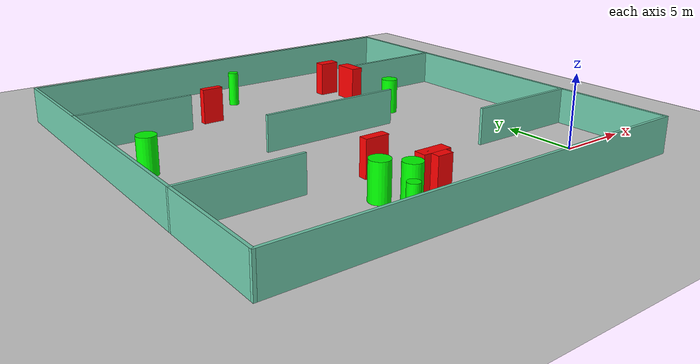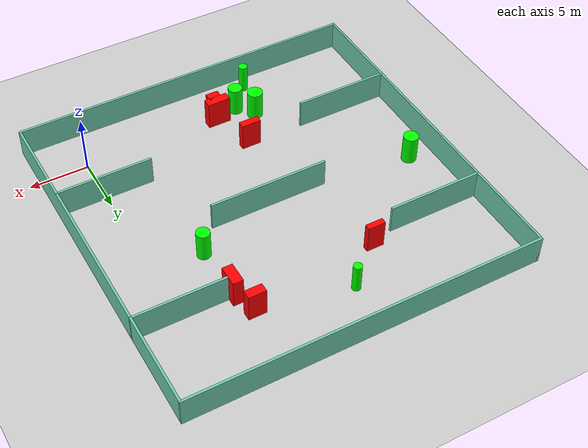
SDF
<sdf version="1.7">
 <world name="default">
  <light name="sun" type="directional">
   <pose>0 0 10 0 -0 0</pose>
   <diffuse>0.8 0.8 0.8 1</diffuse>
   <specular>0.2 0.2 0.2 1</specular>
   <attenuation>
    <range>1000</range>
    <constant>0.9</constant>
    <linear>0.01</linear>
    <quadratic>0.001</quadratic>
   </attenuation>
   <direction>-0.5 0.1 -0.9</direction>
   <spot><inner_angle>0</inner_angle><outer_angle>0</outer_angle><falloff>0</falloff></spot>
  </light>
  <model name="ground_plane">
   <static>1</static>
   <link name="link">
    <collision name="collision">
     <geometry><plane><normal>0 0 1</normal><size>100 100</size></plane></geometry>
     <surface>
      <contact><collide_bitmask>65535</collide_bitmask></contact>
      <friction><ode><mu>100</mu><mu2>50</mu2></ode></friction>
     </surface>
    </collision>
    <visual name="visual">
     <cast_shadows>0</cast_shadows>
     <geometry><plane><normal>0 0 1</normal><size>100 100</size></plane></geometry>
     <material>
      <script><uri>file://media/materials/scripts/gazebo.material</uri><name>Gazebo/Grey</name></script>
     </material>
    </visual>
   </link>
  </model>
  <gravity>0 0 -9.8</gravity>
  <magnetic_field>6e-06 2.3e-05 -4.2e-05</magnetic_field>
  <atmosphere type="adiabatic"/>
  <physics type="ode">
   <max_step_size>0.001</max_step_size>
   <real_time_factor>1</real_time_factor>
   <real_time_update_rate>1000</real_time_update_rate>
  </physics>
  <scene><ambient>0.4 0.4 0.4 1</ambient><background>0.7 0.7 0.7 1</background><shadows>1</shadows></scene>
  <spherical_coordinates>
   <surface_model>EARTH_WGS84</surface_model>
   <latitude_deg>0</latitude_deg>
   <longitude_deg>0</longitude_deg>
   <elevation>0</elevation>
   <heading_deg>0</heading_deg>
  </spherical_coordinates>
  <model name="my_base_walls">
   <link name="Wall_10">
    <collision name="Wall_10_Collision">
     <geometry><box><size>8.2 0.2 2.5</size></box></geometry>
     <pose>0 0 1.25 0 -0 0</pose>
    </collision>
    <visual name="Wall_10_Visual">
     <pose>0 0 1.25 0 -0 0</pose>
     <geometry><box><size>8.2 0.2 2.5</size></box></geometry>
     <material>
      <script><uri>file://media/materials/scripts/gazebo.material</uri><name>Gazebo/Grey</name></script>
      <ambient>0.435294 0.796078 0.67451 1</ambient>
     </material>
     <meta><layer>0</layer></meta>
    </visual>
    <pose>-11 -7 0 0 -0 0</pose>
   </link>
   <link name="Wall_12">
    <collision name="Wall_12_Collision">
     <geometry><box><size>8.2 0.2 2.5</size></box></geometry>
     <pose>0 0 1.25 0 -0 0</pose>
    </collision>
    <visual name="Wall_12_Visual">
     <pose>0 0 1.25 0 -0 0</pose>
     <geometry><box><size>8.2 0.2 2.5</size></box></geometry>
     <material>
      <script><uri>file://media/materials/scripts/gazebo.material</uri><name>Gazebo/Grey</name></script>
      <ambient>0.435294 0.796078 0.67451 1</ambient>
     </material>
     <meta><layer>0</layer></meta>
    </visual>
    <pose>-11 7 0 0 -0 0</pose>
   </link>
   <link name="Wall_14">
    <collision name="Wall_14_Collision">
     <geometry><box><size>8.2 0.2 2.5</size></box></geometry>
     <pose>0 0 1.25 0 -0 0</pose>
    </collision>
    <visual name="Wall_14_Visual">
     <pose>0 0 1.25 0 -0 0</pose>
     <geometry><box><size>8.2 0.2 2.5</size></box></geometry>
     <material>
      <script><uri>file://media/materials/scripts/gazebo.material</uri><name>Gazebo/Grey</name></script>
      <ambient>0.435294 0.796078 0.67451 1</ambient>
     </material>
     <meta><layer>0</layer></meta>
    </visual>
    <pose>11 7 0 0 -0 3.14159</pose>
   </link>
   <link name="Wall_16">
    <collision name="Wall_16_Collision">
     <geometry><box><size>10.2 0.2 2.5</size></box></geometry>
     <pose>0 0 1.25 0 -0 0</pose>
    </collision>
    <visual name="Wall_16_Visual">
     <pose>0 0 1.25 0 -0 0</pose>
     <geometry><box><size>10.2 0.2 2.5</size></box></geometry>
     <material>
      <script><uri>file://media/materials/scripts/gazebo.material</uri><name>Gazebo/Grey</name></script>
      <ambient>0.435294 0.796078 0.67451 1</ambient>
     </material>
     <meta><layer>0</layer></meta>
    </visual>
    <pose>0 0 0 0 -0 3.14159</pose>
   </link>
   <link name="Wall_2">
    <collision name="Wall_2_Collision">
     <geometry><box><size>30.2 0.2 2.5</size></box></geometry>
     <pose>0 0 1.25 0 -0 0</pose>
    </collision>
    <visual name="Wall_2_Visual">
     <pose>0 0 1.25 0 -0 0</pose>
     <geometry><box><size>30.2 0.2 2.5</size></box></geometry>
     <material>
      <script><uri>file://media/materials/scripts/gazebo.material</uri><name>Gazebo/Grey</name></script>
      <ambient>0.435294 0.796078 0.67451 1</ambient>
     </material>
     <meta><layer>0</layer></meta>
    </visual>
    <pose>0 -15 0 0 -0 3.14159</pose>
   </link>
   <link name="Wall_3">
    <collision name="Wall_3_Collision">
     <geometry><box><size>30.2 0.2 2.5</size></box></geometry>
     <pose>0 0 1.25 0 -0 0</pose>
    </collision>
    <visual name="Wall_3_Visual">
     <pose>0 0 1.25 0 -0 0</pose>
     <geometry><box><size>30.2 0.2 2.5</size></box></geometry>
     <material>
      <script><uri>file://media/materials/scripts/gazebo.material</uri><name>Gazebo/Grey</name></script>
      <ambient>0.435294 0.796078 0.67451 1</ambient>
     </material>
     <meta><layer>0</layer></meta>
    </visual>
    <pose>-15 0 0 0 -0 1.5708</pose>
   </link>
   <link name="Wall_4">
    <collision name="Wall_4_Collision">
     <geometry><box><size>30.2 0.2 2.5</size></box></geometry>
     <pose>0 0 1.25 0 -0 0</pose>
    </collision>
    <visual name="Wall_4_Visual">
     <pose>0 0 1.25 0 -0 0</pose>
     <geometry><box><size>30.2 0.2 2.5</size></box></geometry>
     <material>
      <script><uri>file://media/materials/scripts/gazebo.material</uri><name>Gazebo/Grey</name></script>
      <ambient>0.435294 0.796078 0.67451 1</ambient>
     </material>
     <meta><layer>0</layer></meta>
    </visual>
    <pose>0 15 0 0 -0 0</pose>
   </link>
   <link name="Wall_6">
    <collision name="Wall_6_Collision">
     <geometry><box><size>30.2 0.2 2.5</size></box></geometry>
     <pose>0 0 1.25 0 -0 0</pose>
    </collision>
    <visual name="Wall_6_Visual">
     <pose>0 0 1.25 0 -0 0</pose>
     <geometry><box><size>30.2 0.2 2.5</size></box></geometry>
     <material>
      <script><uri>file://media/materials/scripts/gazebo.material</uri><name>Gazebo/Grey</name></script>
      <ambient>0.435294 0.796078 0.67451 1</ambient>
     </material>
     <meta><layer>0</layer></meta>
    </visual>
    <pose>15 0 0 0 -0 1.5708</pose>
   </link>
   <link name="Wall_8">
    <collision name="Wall_8_Collision">
     <geometry><box><size>8.2 0.2 2.5</size></box></geometry>
     <pose>0 0 1.25 0 -0 0</pose>
    </collision>
    <visual name="Wall_8_Visual">
     <pose>0 0 1.25 0 -0 0</pose>
     <geometry><box><size>8.2 0.2 2.5</size></box></geometry>
     <material>
      <script><uri>file://media/materials/scripts/gazebo.material</uri><name>Gazebo/Grey</name></script>
      <ambient>0.435294 0.796078 0.67451 1</ambient>
     </material>
     <meta><layer>0</layer></meta>
    </visual>
    <pose>11 -7 0 0 -0 3.14159</pose>
   </link>
   <static>1</static>
   <pose>-11 11 0 0 -0 0</pose>
  </model>
  <model name="cylinder1">
   <static>1</static>
   <link name="link">
    <inertial>
     <mass>1</mass>
     <inertia><ixx>0.5</ixx><ixy>0</ixy><ixz>0</ixz><iyy>0.5</iyy><iyz>0</iyz><izz>1</izz></inertia>
    </inertial>
    <collision name="collision">
     <geometry><cylinder><radius>0.6677942230409948</radius><length>2.5</length></cylinder></geometry>
    </collision>
    <visual name="visual">
     <geometry><cylinder><radius>0.6677942230409948</radius><length>2.5</length></cylinder></geometry>
     <material>
      <ambient>0 1 0 1</ambient>
      <diffuse>0 1 0 1</diffuse>
      <specular>0.1 0.1 0.1 1</specular>
      <emissive>0 0 0 0</emissive>
     </material>
    </visual>
   </link>
   <pose>-15.226787863155202 0.8773838244805092 1.25 0 0 0</pose>
  </model>
  <model name="cylinder2">
   <static>1</static>
   <link name="link">
    <inertial>
     <mass>1</mass>
     <inertia><ixx>0.5</ixx><ixy>0</ixy><ixz>0</ixz><iyy>0.5</iyy><iyz>0</iyz><izz>1</izz></inertia>
    </inertial>
    <collision name="collision">
     <geometry><cylinder><radius>0.5744585264021542</radius><length>2.5</length></cylinder></geometry>
    </collision>
    <visual name="visual">
     <geometry><cylinder><radius>0.5744585264021542</radius><length>2.5</length></cylinder></geometry>
     <material>
      <ambient>0 1 0 1</ambient>
      <diffuse>0 1 0 1</diffuse>
      <specular>0.1 0.1 0.1 1</specular>
      <emissive>0 0 0 0</emissive>
     </material>
    </visual>
   </link>
   <pose>-4.097068759786051 13.213321430171963 1.25 0 0 0</pose>
  </model>
  <model name="cylinder3">
   <static>1</static>
   <link name="link">
    <inertial>
     <mass>1</mass>
     <inertia><ixx>0.5</ixx><ixy>0</ixy><ixz>0</ixz><iyy>0.5</iyy><iyz>0</iyz><izz>1</izz></inertia>
    </inertial>
    <collision name="collision">
     <geometry><cylinder><radius>0.38428097270067074</radius><length>2.5</length></cylinder></geometry>
    </collision>
    <visual name="visual">
     <geometry><cylinder><radius>0.38428097270067074</radius><length>2.5</length></cylinder></geometry>
     <material>
      <ambient>0 1 0 1</ambient>
      <diffuse>0 1 0 1</diffuse>
      <specular>0.1 0.1 0.1 1</specular>
      <emissive>0 0 0 0</emissive>
     </material>
    </visual>
   </link>
   <pose>-15.952002086833584 -2.627628045599823 1.25 0 0 0</pose>
  </model>
  <model name="cylinder4">
   <static>1</static>
   <link name="link">
    <inertial>
     <mass>1</mass>
     <inertia><ixx>0.5</ixx><ixy>0</ixy><ixz>0</ixz><iyy>0.5</iyy><iyz>0</iyz><izz>1</izz></inertia>
    </inertial>
    <collision name="collision">
     <geometry><cylinder><radius>0.6191851352126526</radius><length>2.5</length></cylinder></geometry>
    </collision>
    <visual name="visual">
     <geometry><cylinder><radius>0.6191851352126526</radius><length>2.5</length></cylinder></geometry>
     <material>
      <ambient>0 1 0 1</ambient>
      <diffuse>0 1 0 1</diffuse>
      <specular>0.1 0.1 0.1 1</specular>
      <emissive>0 0 0 0</emissive>
     </material>
    </visual>
   </link>
   <pose>-14.018634857229305 -0.4210182308976589 1.25 0 0 0</pose>
  </model>
  <model name="cylinder5">
   <static>1</static>
   <link name="link">
    <inertial>
     <mass>1</mass>
     <inertia><ixx>0.5</ixx><ixy>0</ixy><ixz>0</ixz><iyy>0.5</iyy><iyz>0</iyz><izz>1</izz></inertia>
    </inertial>
    <collision name="collision">
     <geometry><cylinder><radius>0.6417091608494926</radius><length>2.5</length></cylinder></geometry>
    </collision>
    <visual name="visual">
     <geometry><cylinder><radius>0.6417091608494926</radius><length>2.5</length></cylinder></geometry>
     <material>
      <ambient>0 1 0 1</ambient>
      <diffuse>0 1 0 1</diffuse>
      <specular>0.1 0.1 0.1 1</specular>
      <emissive>0 0 0 0</emissive>
     </material>
    </visual>
   </link>
   <pose>-23.775687346288937 11.893020842292279 1.25 0 0 0</pose>
  </model>
  <model name="cylinder6">
   <static>1</static>
   <link name="link">
    <inertial>
     <mass>1</mass>
     <inertia><ixx>0.5</ixx><ixy>0</ixy><ixz>0</ixz><iyy>0.5</iyy><iyz>0</iyz><izz>1</izz></inertia>
    </inertial>
    <collision name="collision">
     <geometry><cylinder><radius>0.3627433387147129</radius><length>2.5</length></cylinder></geometry>
    </collision>
    <visual name="visual">
     <geometry><cylinder><radius>0.3627433387147129</radius><length>2.5</length></cylinder></geometry>
     <material>
      <ambient>0 1 0 1</ambient>
      <diffuse>0 1 0 1</diffuse>
      <specular>0.1 0.1 0.1 1</specular>
      <emissive>0 0 0 0</emissive>
     </material>
    </visual>
   </link>
   <pose>-12.54455368913249 21.658874908526776 1.25 0 0 0</pose>
  </model>
  <model name="box1">
   <static>1</static>
   <link name="link">
    <inertial>
     <mass>1</mass>
     <inertia><ixx>0.083</ixx><ixy>0</ixy><ixz>0</ixz><iyy>0.083</iyy><iyz>0</iyz><izz>0.083</izz></inertia>
    </inertial>
    <collision name="collision">
     <geometry><box><size>1.4911696288026515 0.5047592375663806 2.5</size></box></geometry>
    </collision>
    <visual name="visual">
     <geometry><box><size>1.4911696288026515 0.5047592375663806 2.5</size></box></geometry>
     <material>
      <ambient>1 0 0 1</ambient>
      <diffuse>1 0 0 1</diffuse>
      <specular>0.1 0.1 0.1 1</specular>
      <emissive>0 0 0 0</emissive>
     </material>
    </visual>
    <sensor name="my_contact" type="contact">
     <contact><collision>box_collision</collision><topic>__default_topic__</topic></contact>
    </sensor>
   </link>
   <pose>-15.936404089550454 18.758785111863 1.25 0 0 0</pose>
  </model>
  <model name="box2">
   <static>1</static>
   <link name="link">
    <inertial>
     <mass>1</mass>
     <inertia><ixx>0.083</ixx><ixy>0</ixy><ixz>0</ixz><iyy>0.083</iyy><iyz>0</iyz><izz>0.083</izz></inertia>
    </inertial>
    <collision name="collision">
     <geometry><box><size>2.0064410732695297 0.7905271504671451 2.5</size></box></geometry>
    </collision>
    <visual name="visual">
     <geometry><box><size>2.0064410732695297 0.7905271504671451 2.5</size></box></geometry>
     <material>
      <ambient>1 0 0 1</ambient>
      <diffuse>1 0 0 1</diffuse>
      <specular>0.1 0.1 0.1 1</specular>
      <emissive>0 0 0 0</emissive>
     </material>
    </visual>
    <sensor name="my_contact" type="contact">
     <contact><collision>box_collision</collision><topic>__default_topic__</topic></contact>
    </sensor>
   </link>
   <pose>-11.995018067159538 0.18830231811434572 1.25 0 0 0</pose>
  </model>
  <model name="box3">
   <static>1</static>
   <link name="link">
    <inertial>
     <mass>1</mass>
     <inertia><ixx>0.083</ixx><ixy>0</ixy><ixz>0</ixz><iyy>0.083</iyy><iyz>0</iyz><izz>0.083</izz></inertia>
    </inertial>
    <collision name="collision">
     <geometry><box><size>1.4984505065793359 0.7699952551854543 2.5</size></box></geometry>
    </collision>
    <visual name="visual">
     <geometry><box><size>1.4984505065793359 0.7699952551854543 2.5</size></box></geometry>
     <material>
      <ambient>1 0 0 1</ambient>
      <diffuse>1 0 0 1</diffuse>
      <specular>0.1 0.1 0.1 1</specular>
      <emissive>0 0 0 0</emissive>
     </material>
    </visual>
    <sensor name="my_contact" type="contact">
     <contact><collision>box_collision</collision><topic>__default_topic__</topic></contact>
    </sensor>
   </link>
   <pose>-4.831345603335391 20.113265775308403 1.25 0 0 0</pose>
  </model>
  <model name="box4">
   <static>1</static>
   <link name="link">
    <inertial>
     <mass>1</mass>
     <inertia><ixx>0.083</ixx><ixy>0</ixy><ixz>0</ixz><iyy>0.083</iyy><iyz>0</iyz><izz>0.083</izz></inertia>
    </inertial>
    <collision name="collision">
     <geometry><box><size>0.8823456017055864 1.7768944126226272 2.5</size></box></geometry>
    </collision>
    <visual name="visual">
     <geometry><box><size>0.8823456017055864 1.7768944126226272 2.5</size></box></geometry>
     <material>
      <ambient>1 0 0 1</ambient>
      <diffuse>1 0 0 1</diffuse>
      <specular>0.1 0.1 0.1 1</specular>
      <emissive>0 0 0 0</emissive>
     </material>
    </visual>
    <sensor name="my_contact" type="contact">
     <contact><collision>box_collision</collision><topic>__default_topic__</topic></contact>
    </sensor>
   </link>
   <pose>-4.153229556182886 17.928861802058773 1.25 0 0 0</pose>
  </model>
  <model name="box5">
   <static>1</static>
   <link name="link">
    <inertial>
     <mass>1</mass>
     <inertia><ixx>0.083</ixx><ixy>0</ixy><ixz>0</ixz><iyy>0.083</iyy><iyz>0</iyz><izz>0.083</izz></inertia>
    </inertial>
    <collision name="collision">
     <geometry><box><size>1.683729194985675 0.620495431844948 2.5</size></box></geometry>
    </collision>
    <visual name="visual">
     <geometry><box><size>1.683729194985675 0.620495431844948 2.5</size></box></geometry>
     <material>
      <ambient>1 0 0 1</ambient>
      <diffuse>1 0 0 1</diffuse>
      <specular>0.1 0.1 0.1 1</specular>
      <emissive>0 0 0 0</emissive>
     </material>
    </visual>
    <sensor name="my_contact" type="contact">
     <contact><collision>box_collision</collision><topic>__default_topic__</topic></contact>
    </sensor>
   </link>
   <pose>-13.085953470464265 3.96531557079496 1.25 0 0 0</pose>
  </model>
  <model name="box6">
   <static>1</static>
   <link name="link">
    <inertial>
     <mass>1</mass>
     <inertia><ixx>0.083</ixx><ixy>0</ixy><ixz>0</ixz><iyy>0.083</iyy><iyz>0</iyz><izz>0.083</izz></inertia>
    </inertial>
    <collision name="collision">
     <geometry><box><size>1.091461763327555 0.9530451269718786 2.5</size></box></geometry>
    </collision>
    <visual name="visual">
     <geometry><box><size>1.091461763327555 0.9530451269718786 2.5</size></box></geometry>
     <material>
      <ambient>1 0 0 1</ambient>
      <diffuse>1 0 0 1</diffuse>
      <specular>0.1 0.1 0.1 1</specular>
      <emissive>0 0 0 0</emissive>
     </material>
    </visual>
    <sensor name="my_contact" type="contact">
     <contact><collision>box_collision</collision><topic>__default_topic__</topic></contact>
    </sensor>
   </link>
   <pose>-11.957373404662874 -0.32111719030510955 1.25 0 0 0</pose>
  </model>
 </world>
</sdf>
